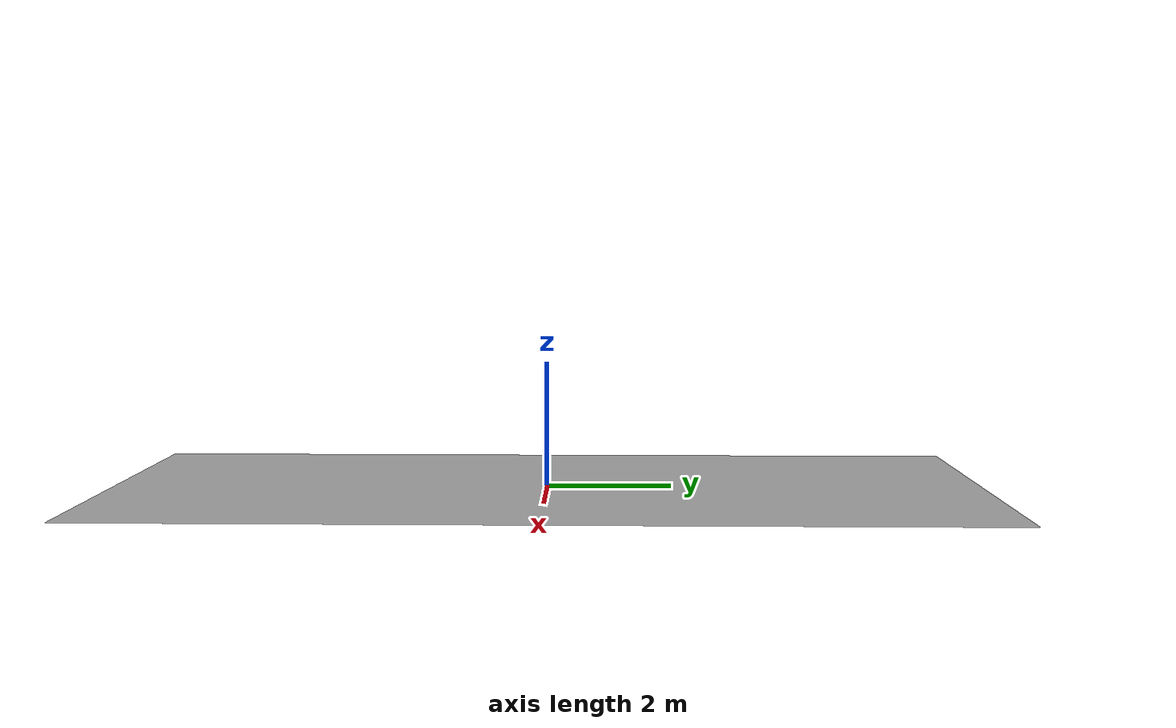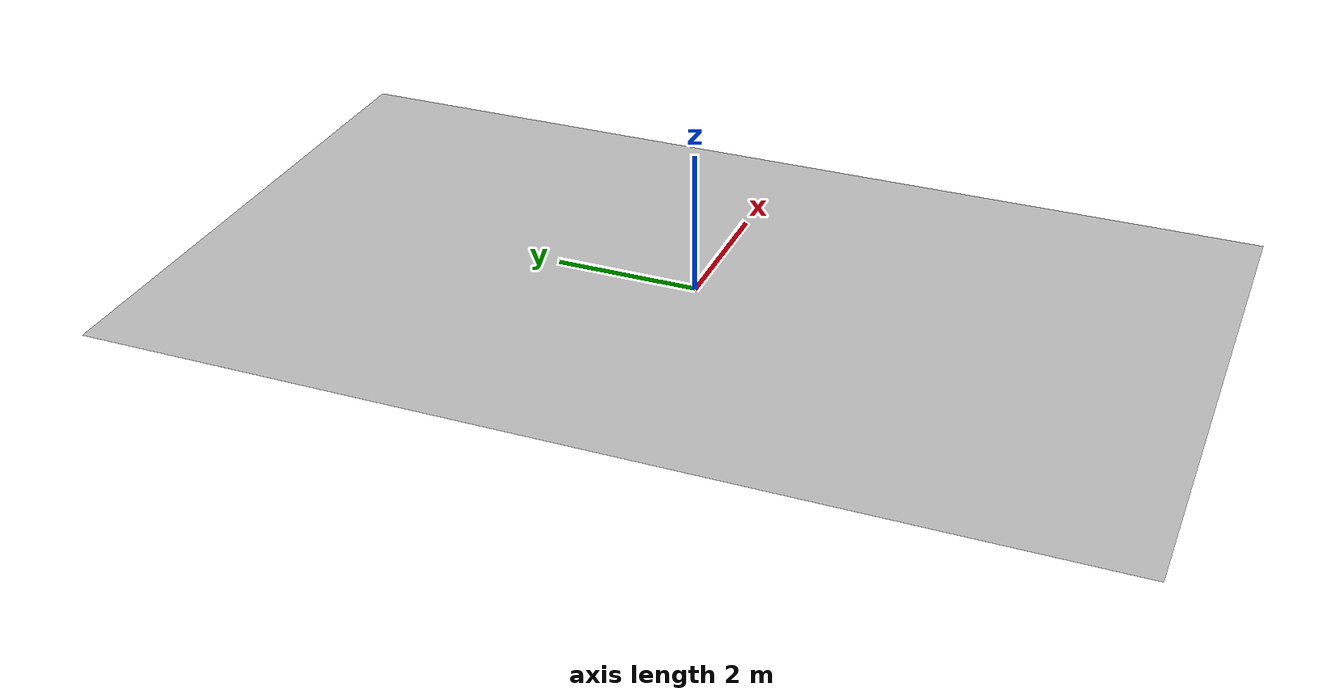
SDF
<?xml version="1.0"?>
<sdf version="1.7">
    <model name="ground_floor">
        <static>true</static>
        <link name="link">

            <visual name="visual">
                <cast_shadows>false</cast_shadows>
                <geometry>
                    <box>
                        <size>8.0 14.0 0.000001</size>
                    </box>
                </geometry>
                <material>
                     <script>
                        <uri>model://floor/materials/scripts</uri>
                        <uri>model://floor/materials/textures</uri>
                        <name>vrc/groundfloor</name>
                    </script>
                </material>
            </visual>
        </link>
    </model>
</sdf>
